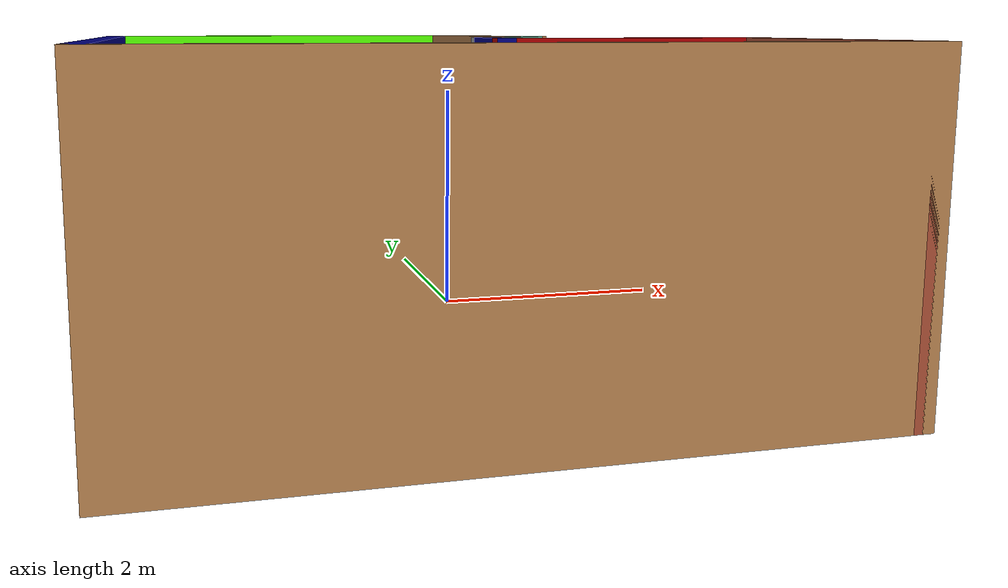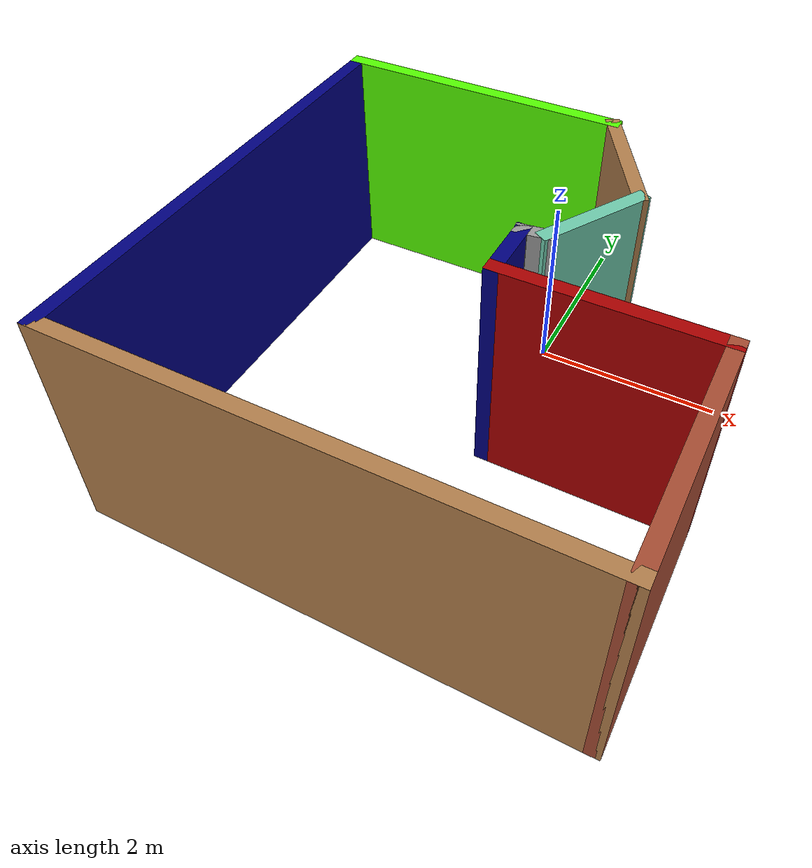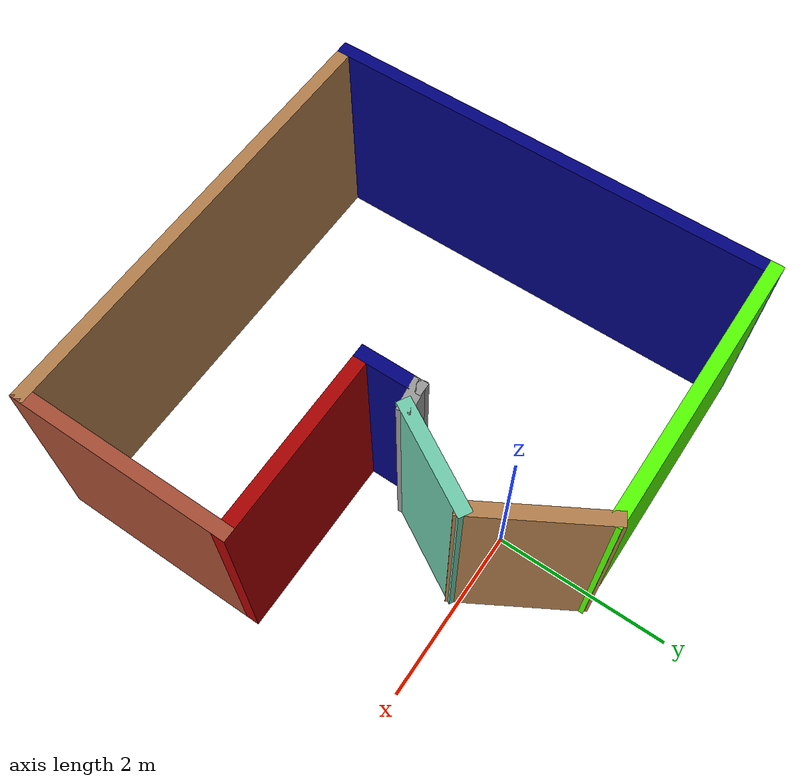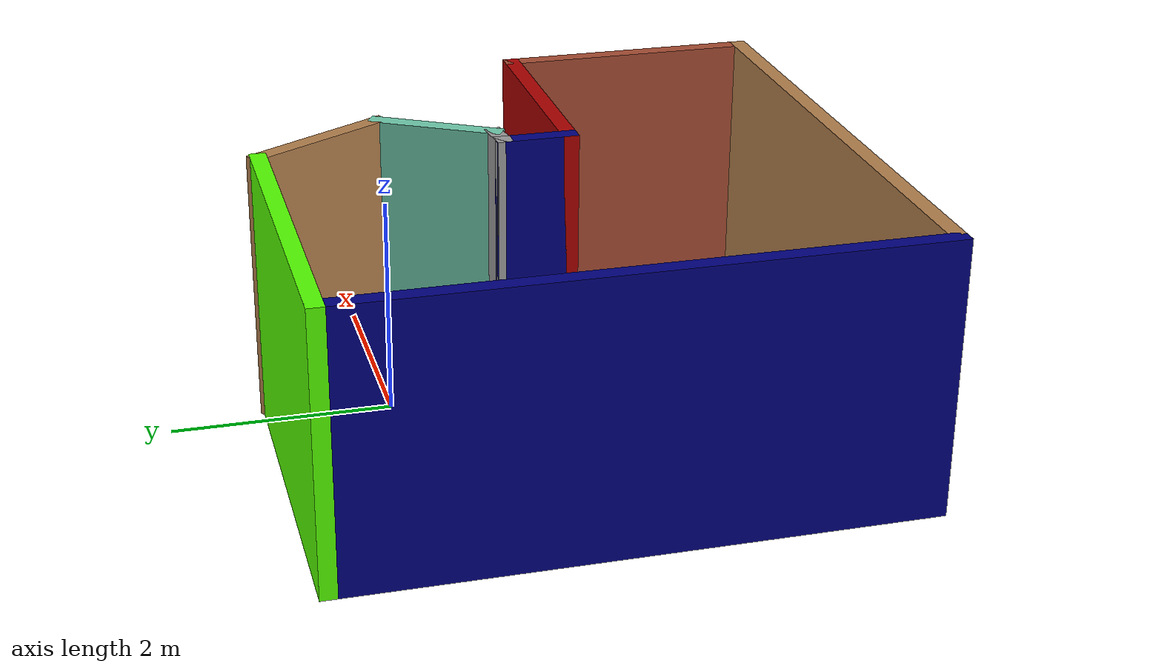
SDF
<?xml version='1.0'?>
<sdf version='1.6'>
  <model name='MyBuilding'>
    <pose frame=''>-0.415 -1.46451 0 0 -0 0</pose>
    <link name='Wall_10'>
      <collision name='Wall_10_Collision'>
        <geometry>
          <box>
            <size>0.15 0.15 2.5</size>
          </box>
        </geometry>
        <pose frame=''>0 0 1.25 0 -0 0</pose>
      </collision>
      <visual name='Wall_10_Visual'>
        <pose frame=''>0 0 1.25 0 -0 0</pose>
        <geometry>
          <box>
            <size>0.15 0.15 2.5</size>
          </box>
        </geometry>
        <material>
          <script>
            <uri>file://media/materials/scripts/gazebo.material</uri>
            <name>Gazebo/Grey</name>
          </script>
          <ambient>1 1 1 1</ambient>
        </material>
        <meta>
          <layer>0</layer>
        </meta>
      </visual>
      <pose frame=''>0.45 0.386274 0 0 -0 0</pose>
    </link>
    <link name='Wall_12'>
      <collision name='Wall_12_Collision'>
        <geometry>
          <box>
            <size>0.75 0.15 2.5</size>
          </box>
        </geometry>
        <pose frame=''>0 0 1.25 0 -0 0</pose>
      </collision>
      <visual name='Wall_12_Visual'>
        <pose frame=''>0 0 1.25 0 -0 0</pose>
        <geometry>
          <box>
            <size>0.75 0.15 2.5</size>
          </box>
        </geometry>
        <material>
          <script>
            <uri>file://media/materials/scripts/gazebo.material</uri>
            <name>Gazebo/Grey</name>
          </script>
          <ambient>0 0 0.498039 1</ambient>
        </material>
        <meta>
          <layer>0</layer>
        </meta>
      </visual>
      <pose frame=''>0.45 0.086274 0 0 -0 1.5708</pose>
    </link>
    <link name='Wall_13'>
      <collision name='Wall_13_Collision'>
        <geometry>
          <box>
            <size>0.376765 0.15 2.5</size>
          </box>
        </geometry>
        <pose frame=''>0 0 1.25 0 -0 0</pose>
      </collision>
      <visual name='Wall_13_Visual'>
        <pose frame=''>0 0 1.25 0 -0 0</pose>
        <geometry>
          <box>
            <size>0.376765 0.15 2.5</size>
          </box>
        </geometry>
        <material>
          <script>
            <uri>file://media/materials/scripts/gazebo.material</uri>
            <name>Gazebo/Grey</name>
          </script>
          <ambient>1 1 1 1</ambient>
        </material>
        <meta>
          <layer>0</layer>
        </meta>
      </visual>
      <pose frame=''>0.5625 0.400393 0 0 -0 0.124848</pose>
    </link>
    <link name='Wall_2'>
      <collision name='Wall_2_Collision'>
        <geometry>
          <box>
            <size>1.25 0.15 2.5</size>
          </box>
        </geometry>
        <pose frame=''>0 0 1.25 0 -0 0</pose>
      </collision>
      <visual name='Wall_2_Visual'>
        <pose frame=''>0 0 1.25 0 -0 0</pose>
        <geometry>
          <box>
            <size>1.25 0.15 2.5</size>
          </box>
        </geometry>
        <material>
          <script>
            <uri>file://media/materials/scripts/gazebo.material</uri>
            <name>Gazebo/Grey</name>
          </script>
          <ambient>0.435294 0.796078 0.67451 1</ambient>
        </material>
        <meta>
          <layer>0</layer>
        </meta>
      </visual>
      <pose frame=''>0.95 0.890826 0 0 -0 1.0472</pose>
    </link>
    <link name='Wall_3'>
      <collision name='Wall_3_Collision'>
        <geometry>
          <box>
            <size>1.5 0.15 2.5</size>
          </box>
        </geometry>
        <pose frame=''>0 0 1.25 0 -0 0</pose>
      </collision>
      <visual name='Wall_3_Visual'>
        <pose frame=''>0 0 1.25 0 -0 0</pose>
        <geometry>
          <box>
            <size>1.5 0.15 2.5</size>
          </box>
        </geometry>
        <material>
          <script>
            <uri>file://media/materials/scripts/gazebo.material</uri>
            <name>Gazebo/Wood</name>
          </script>
          <ambient>1 1 1 1</ambient>
        </material>
        <meta>
          <layer>0</layer>
        </meta>
      </visual>
      <pose frame=''>0.8875 1.95171 0 0 -0 2.0944</pose>
    </link>
    <link name='Wall_4'>
      <collision name='Wall_4_Collision'>
        <geometry>
          <box>
            <size>3.25 0.15 2.5</size>
          </box>
        </geometry>
        <pose frame=''>0 0 1.25 0 -0 0</pose>
      </collision>
      <visual name='Wall_4_Visual'>
        <pose frame=''>0 0 1.25 0 -0 0</pose>
        <geometry>
          <box>
            <size>3.25 0.15 2.5</size>
          </box>
        </geometry>
        <material>
          <script>
            <uri>file://media/materials/scripts/gazebo.material</uri>
            <name>Gazebo/Grey</name>
          </script>
          <ambient>0.333333 1 0 1</ambient>
        </material>
        <meta>
          <layer>0</layer>
        </meta>
      </visual>
      <pose frame=''>-1 2.53627 0 0 -0 3.14159</pose>
    </link>
    <link name='Wall_5'>
      <collision name='Wall_5_Collision'>
        <geometry>
          <box>
            <size>5.25 0.15 2.5</size>
          </box>
        </geometry>
        <pose frame=''>0 0 1.25 0 -0 0</pose>
      </collision>
      <visual name='Wall_5_Visual'>
        <pose frame=''>0 0 1.25 0 -0 0</pose>
        <geometry>
          <box>
            <size>5.25 0.15 2.5</size>
          </box>
        </geometry>
        <material>
          <script>
            <uri>file://media/materials/scripts/gazebo.material</uri>
            <name>Gazebo/Grey</name>
          </script>
          <ambient>0 0 0.498039 1</ambient>
        </material>
        <meta>
          <layer>0</layer>
        </meta>
      </visual>
      <pose frame=''>-2.55 -0.013726 0 0 0 -1.5708</pose>
    </link>
    <link name='Wall_6'>
      <collision name='Wall_6_Collision'>
        <geometry>
          <box>
            <size>5.25 0.15 2.5</size>
          </box>
        </geometry>
        <pose frame=''>0 0 1.25 0 -0 0</pose>
      </collision>
      <visual name='Wall_6_Visual'>
        <pose frame=''>0 0 1.25 0 -0 0</pose>
        <geometry>
          <box>
            <size>5.25 0.15 2.5</size>
          </box>
        </geometry>
        <material>
          <script>
            <uri>file://media/materials/scripts/gazebo.material</uri>
            <name>Gazebo/Wood</name>
          </script>
          <ambient>1 1 1 1</ambient>
        </material>
        <meta>
          <layer>0</layer>
        </meta>
      </visual>
      <pose frame=''>0 -2.56373 0 0 -0 0</pose>
    </link>
    <link name='Wall_7'>
      <collision name='Wall_7_Collision'>
        <geometry>
          <box>
            <size>2.5 0.15 2.5</size>
          </box>
        </geometry>
        <pose frame=''>0 0 1.25 0 -0 0</pose>
      </collision>
      <visual name='Wall_7_Visual'>
        <pose frame=''>0 0 1.25 0 -0 0</pose>
        <geometry>
          <box>
            <size>2.5 0.15 2.5</size>
          </box>
        </geometry>
        <material>
          <script>
            <uri>file://media/materials/scripts/gazebo.material</uri>
            <name>Gazebo/Bricks</name>
          </script>
          <ambient>1 1 1 1</ambient>
        </material>
        <meta>
          <layer>0</layer>
        </meta>
      </visual>
      <pose frame=''>2.55 -1.38873 0 0 -0 1.5708</pose>
    </link>
    <link name='Wall_8'>
      <collision name='Wall_8_Collision'>
        <geometry>
          <box>
            <size>2.25 0.15 2.5</size>
          </box>
        </geometry>
        <pose frame=''>0 0 1.25 0 -0 0</pose>
      </collision>
      <visual name='Wall_8_Visual'>
        <pose frame=''>0 0 1.25 0 -0 0</pose>
        <geometry>
          <box>
            <size>2.25 0.15 2.5</size>
          </box>
        </geometry>
        <material>
          <script>
            <uri>file://media/materials/scripts/gazebo.material</uri>
            <name>Gazebo/Grey</name>
          </script>
          <ambient>0.666667 0 0 1</ambient>
        </material>
        <meta>
          <layer>0</layer>
        </meta>
      </visual>
      <pose frame=''>1.5 -0.213726 0 0 -0 3.14159</pose>
    </link>
    <static>1</static>
  </model>
</sdf>
